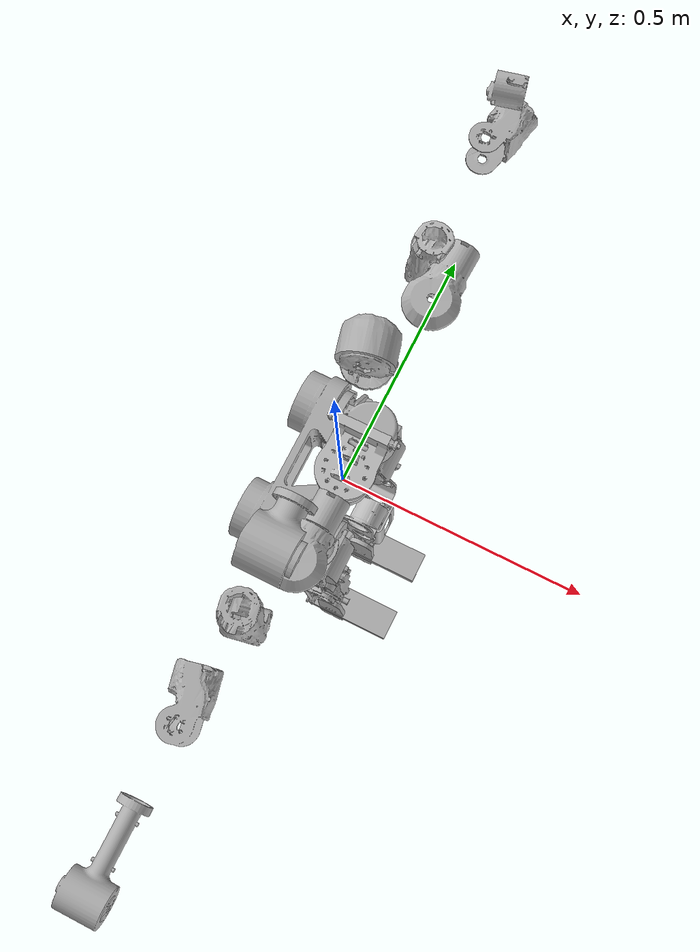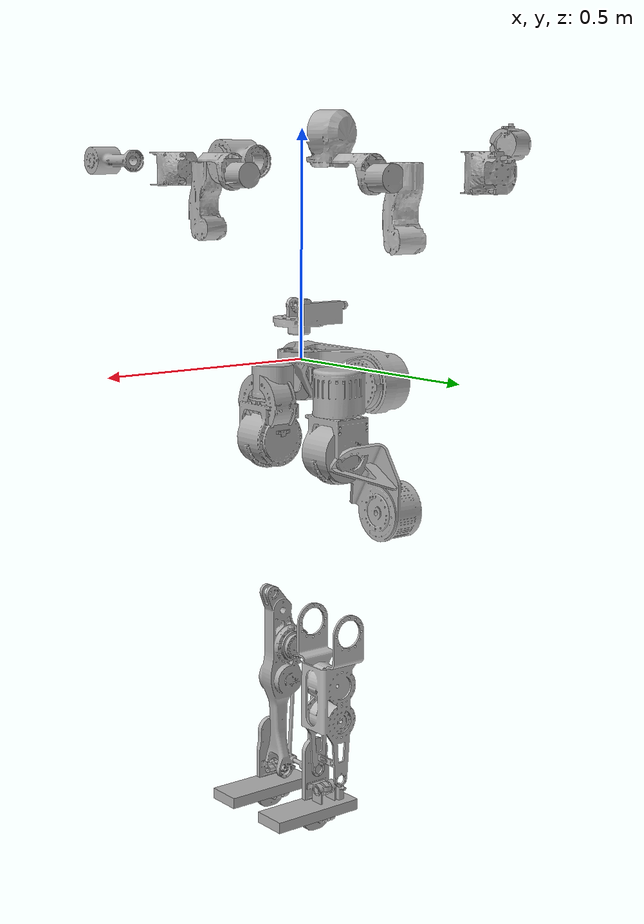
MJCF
<mujoco model="sbt">
  <compiler angle="radian" meshdir="meshes/"/>

  <asset>
    <mesh name="base_link" content_type="model/stl" file="base_link.STL"/>
    <mesh name="left_hip_roll" content_type="model/stl" file="left_hip_roll.STL"/>
    <mesh name="left_hip_yaw" content_type="model/stl" file="left_hip_yaw.STL"/>
    <mesh name="left_hip_pitch" content_type="model/stl" file="left_hip_pitch.STL"/>
    <mesh name="left_knee" content_type="model/stl" file="left_knee.STL"/>
    <mesh name="left_ankle_pitch" content_type="model/stl" file="left_ankle_pitch.STL"/>
    <mesh name="left_ankle_roll" content_type="model/stl" file="left_ankle_roll.STL"/>
    <mesh name="right_hip_roll" content_type="model/stl" file="right_hip_roll.STL"/>
    <mesh name="right_hip_yaw" content_type="model/stl" file="right_hip_yaw.STL"/>
    <mesh name="right_hip_pitch" content_type="model/stl" file="right_hip_pitch.STL"/>
    <mesh name="right_knee" content_type="model/stl" file="right_knee.STL"/>
    <mesh name="right_ankle_pitch" content_type="model/stl" file="right_ankle_pitch.STL"/>
    <mesh name="right_ankle_roll" content_type="model/stl" file="right_ankle_roll.STL"/>
    <mesh name="waist_yaw" content_type="model/stl" file="waist_yaw.STL"/>
    <mesh name="left_shoulder_pitch" content_type="model/stl" file="left_shoulder_pitch.STL"/>
    <mesh name="left_shoulder_roll" content_type="model/stl" file="left_shoulder_roll.STL"/>
    <mesh name="left_shoulder_yaw" content_type="model/stl" file="left_shoulder_yaw.STL"/>
    <mesh name="left_elbow" content_type="model/stl" file="left_elbow.STL"/>
    <mesh name="left_wrist_roll" content_type="model/stl" file="left_wrist_roll.STL"/>
    <mesh name="right_shoulder_pitch" content_type="model/stl" file="right_shoulder_pitch.STL"/>
    <mesh name="right_shoulder_roll" content_type="model/stl" file="right_shoulder_roll.STL"/>
    <mesh name="right_shoulder_yaw" content_type="model/stl" file="right_shoulder_yaw.STL"/>
    <mesh name="right_elbow" content_type="model/stl" file="right_elbow.STL"/>
    <mesh name="right_wrist_roll" content_type="model/stl" file="right_wrist_roll.STL"/>
  </asset>

  <worldbody>
    <body name="base_link">
      <inertial pos="-0.10125 -1.4179e-07 -0.041448" quat="0.68958 0.68958 0.156458 -0.156457" mass="7.4135" diaginertia="0.0292714 0.0262626 0.014902"/>
      <geom type="mesh" contype="0" conaffinity="0" group="1" density="0" rgba="0.69804 0.69804 0.69804 1" mesh="base_link"/>
      <geom type="mesh" rgba="0.69804 0.69804 0.69804 1" mesh="base_link"/>
      <body name="left_hip_roll" pos="-0.11644 0.1225 -0.04795">
        <inertial pos="0.10837 -2.3489e-06 -0.020356" quat="-2.31903e-06 0.786727 -5.4744e-06 0.617301" mass="2.1827" diaginertia="0.00347587 0.0032228 0.00284013"/>
        <joint name="left_hip_roll_joint" pos="0 0 0" axis="1 0 0" range="-0.17 0.44" actuatorfrcrange="-267 267"/>
        <geom type="mesh" contype="0" conaffinity="0" group="1" density="0" rgba="0.69804 0.69804 0.69804 1" mesh="left_hip_roll"/>
        <body name="left_hip_yaw" pos="0.1155 0 -0.0182">
          <inertial pos="-0.00016271 -0.0040921 -0.1177" quat="0.705796 -0.0476295 0.0697462 0.703363" mass="3.3125" diaginertia="0.00629233 0.00531675 0.00516232"/>
          <joint name="left_hip_yaw_joint" pos="0 0 0" axis="0 0 1" range="-0.7 0.7" actuatorfrcrange="-121 121"/>
          <geom type="mesh" contype="0" conaffinity="0" group="1" density="0" rgba="0.69804 0.69804 0.69804 1" mesh="left_hip_yaw"/>
          <body name="left_hip_pitch" pos="0 -0.0015 -0.125">
            <inertial pos="0.0025393 0.0034884 -0.15511" quat="0.696148 -0.0392199 0.0223547 0.716477" mass="5.7187" diaginertia="0.0332183 0.0326321 0.00953413"/>
            <joint name="left_hip_pitch_joint" pos="0 0 0" axis="0 1 0" range="-1.34 1.83" actuatorfrcrange="-267 267"/>
            <geom type="mesh" contype="0" conaffinity="0" group="1" density="0" rgba="0.69804 0.69804 0.69804 1" mesh="left_hip_pitch"/>
            <body name="left_knee" pos="0 -0.034937 -0.4">
              <inertial pos="-0.017852 -6.7212e-06 -0.15577" quat="0.702401 2.77719e-05 -0.0026194 0.711777" mass="3.6902" diaginertia="0.0227294 0.0220441 0.00239045"/>
              <joint name="left_knee_joint" pos="0 0 0" axis="0 -1 0" range="-2.09 0.09" actuatorfrcrange="-267 267"/>
              <geom type="mesh" contype="0" conaffinity="0" group="1" density="0" rgba="0.75294 0.75294 0.75294 1" mesh="left_knee"/>
              <body name="left_ankle_pitch" pos="0 0.00043724 -0.387">
                <inertial pos="1.6609e-09 3.2596e-09 -6.0503e-09" quat="0.707107 0.707107 0 0" mass="0.09865" diaginertia="2.4782e-05 2.4168e-05 6.0596e-06"/>
                <joint name="left_ankle_pitch_joint" pos="0 0 0" axis="0 -1 0" range="-0.52 1.05" actuatorfrcrange="-42 42"/>
                <geom type="mesh" contype="0" conaffinity="0" group="1" density="0" rgba="0.69804 0.69804 0.69804 1" mesh="left_ankle_pitch"/>
                <body name="left_ankle_roll">
                  <inertial pos="0.039669 -5.3886e-08 -0.036778" quat="0 0.733534 0 0.679653" mass="0.60538" diaginertia="0.00265188 0.0025604 0.000326769"/>
                  <joint name="left_ankle_roll_joint" pos="0 0 0" axis="-1 0 0" range="-0.44 0.44" actuatorfrcrange="-42 42"/>
                  <geom type="mesh" contype="0" conaffinity="0" group="1" density="0" rgba="0.69804 0.69804 0.69804 1" mesh="left_ankle_roll"/>
                  <geom size="0.1125 0.04 0.0125" pos="0.046 0 -0.042" type="box" rgba="0.69804 0.69804 0.69804 1"/>
                  <body name="left_foot_front_link" pos="0.15 0 -0.052"/>
                  <body name="left_foot_mid_link" pos="0.05 0 -0.052"/>
                  <body name="left_foot_hind_link" pos="-0.06 0 -0.052"/>
                </body>
              </body>
            </body>
          </body>
        </body>
      </body>
      <body name="right_hip_roll" pos="-0.11644 -0.1225 -0.04795">
        <inertial pos="0.10837 -2.3489e-06 -0.020356" quat="-2.31903e-06 0.786727 -5.4744e-06 0.617301" mass="2.1827" diaginertia="0.00347587 0.0032228 0.00284013"/>
        <joint name="right_hip_roll_joint" pos="0 0 0" axis="1 0 0" range="-0.44 0.17" actuatorfrcrange="-267 267"/>
        <geom type="mesh" contype="0" conaffinity="0" group="1" density="0" rgba="0.69804 0.69804 0.69804 1" mesh="right_hip_roll"/>
        <body name="right_hip_yaw" pos="0.1155 0 -0.0182">
          <inertial pos="-0.00016274 0.0040921 -0.1177" quat="0.703362 0.0697434 -0.0476322 0.705797" mass="3.3125" diaginertia="0.00629233 0.00531675 0.00516232"/>
          <joint name="right_hip_yaw_joint" pos="0 0 0" axis="0 0 1" range="-0.7 0.7" actuatorfrcrange="-121 121"/>
          <geom type="mesh" contype="0" conaffinity="0" group="1" density="0" rgba="0.69804 0.69804 0.69804 1" mesh="right_hip_yaw"/>
          <body name="right_hip_pitch" pos="0 0.0015 -0.125">
            <inertial pos="0.0025393 -0.0034884 -0.15511" quat="0.716393 0.0223445 -0.0392287 0.696235" mass="5.7187" diaginertia="0.0332183 0.0326321 0.0095343"/>
            <joint name="right_hip_pitch_joint" pos="0 0 0" axis="0 1 0" range="-1.34 1.83" actuatorfrcrange="-267 267"/>
            <geom type="mesh" contype="0" conaffinity="0" group="1" density="0" rgba="0.69804 0.69804 0.69804 1" mesh="right_hip_pitch"/>
            <body name="right_knee" pos="0 0.034937 -0.4">
              <inertial pos="-0.017852 6.7212e-06 -0.15577" quat="0.711798 -0.00262139 2.52241e-05 0.702379" mass="3.6902" diaginertia="0.0227294 0.0220441 0.00239045"/>
              <joint name="right_knee_joint" pos="0 0 0" axis="0 -1 0" range="-2.09 0.09" actuatorfrcrange="-267 267"/>
              <geom type="mesh" contype="0" conaffinity="0" group="1" density="0" rgba="0.69804 0.69804 0.69804 1" mesh="right_knee"/>
              <body name="right_ankle_pitch" pos="0 -0.00043724 -0.387">
                <inertial pos="1.6609e-09 3.2596e-09 -6.0503e-09" quat="0.707107 0.707107 0 0" mass="0.09865" diaginertia="2.4782e-05 2.4168e-05 6.0596e-06"/>
                <joint name="right_ankle_pitch_joint" pos="0 0 0" axis="0 -1 0" range="-0.52 1.05" actuatorfrcrange="-42 42"/>
                <geom type="mesh" contype="0" conaffinity="0" group="1" density="0" rgba="0.69804 0.69804 0.69804 1" mesh="right_ankle_pitch"/>
                <body name="right_ankle_roll">
                  <inertial pos="0.039669 -5.3901e-08 -0.036778" quat="0 0.733534 0 0.679653" mass="0.60538" diaginertia="0.00265188 0.0025604 0.000326769"/>
                  <joint name="right_ankle_roll_joint" pos="0 0 0" axis="-1 0 0" range="-0.44 0.44" actuatorfrcrange="-42 42"/>
                  <geom type="mesh" contype="0" conaffinity="0" group="1" density="0" rgba="0.69804 0.69804 0.69804 1" mesh="right_ankle_roll"/>
                  <geom size="0.1125 0.04 0.0125" pos="0.046 0 -0.042" type="box" rgba="0.69804 0.69804 0.69804 1"/>
                  <body name="right_foot_front_link" pos="0.15 0 -0.052"/>
                  <body name="right_foot_mid_link" pos="0.05 0 -0.052"/>
                  <body name="right_foot_hind_link" pos="-0.06 0 -0.052"/>
                </body>
              </body>
            </body>
          </body>
        </body>
      </body>
      <body name="waist_yaw" pos="0.0080635 0 0.0573">
        <inertial pos="0.001283 -7.589e-05 0.20559" quat="0.501725 0.497653 -0.502492 0.498112" mass="10.4394" diaginertia="0.033042 0.0323261 0.0304469"/>
        <geom type="mesh" contype="0" conaffinity="0" group="1" density="0" rgba="0.75294 0.75294 0.75294 1" mesh="waist_yaw"/>
        <geom type="mesh" rgba="0.75294 0.75294 0.75294 1" mesh="waist_yaw"/>
        <body name="upper_body_link" pos="0 0 0.3">
          <body name="left_shoulder_pitch" pos="0 0.098693 0.07088">
            <inertial pos="0.0091062 0.13568 0.00087007" quat="0.705814 0.705815 -0.0427311 -0.0427293" mass="1.4073" diaginertia="0.00186382 0.0017462 0.00138138"/>
            <joint name="left_shoulder_pitch_joint" pos="0 0 0" axis="0 1 0" range="-3.09 2.67" actuatorfrcrange="-60 60"/>
            <geom type="mesh" contype="0" conaffinity="0" group="1" density="0" rgba="0.69804 0.69804 0.69804 1" mesh="left_shoulder_pitch"/>
            <body name="left_shoulder_roll" pos="0.0444 0.14081 0.00087012">
              <inertial pos="-0.044206 0.091886 2.9541e-07" quat="0.434132 0.558013 -0.434293 0.558158" mass="1.0231" diaginertia="0.0013318 0.00131096 0.000682828"/>
              <joint name="left_shoulder_roll_joint" pos="0 0 0" axis="-1 0 0" range="-1.59 2.25" actuatorfrcrange="-60 60"/>
              <geom type="mesh" contype="0" conaffinity="0" group="1" density="0" rgba="0.69804 0.69804 0.69804 1" mesh="left_shoulder_roll"/>
              <body name="left_shoulder_yaw" pos="-0.0444 0.103 0">
                <inertial pos="-0.00062283 0.18132 0.008027" quat="0.38132 0.400028 -0.613332 0.564267" mass="1.222" diaginertia="0.00254591 0.00253872 0.00101317"/>
                <joint name="left_shoulder_yaw_joint" pos="0 0 0" axis="0 1 0" range="-2.62 2.62" actuatorfrcrange="-60 60"/>
                <geom type="mesh" contype="0" conaffinity="0" group="1" density="0" rgba="0.75294 0.75294 0.75294 1" mesh="left_shoulder_yaw"/>
                <body name="left_elbow" pos="0 0.197 0.0135">
                  <inertial pos="-4.9236e-08 0.080341 -0.013515" quat="0.791621 0.611013 -3.90561e-05 4.75426e-05" mass="0.73325" diaginertia="0.00086196 0.000834991 0.000390249"/>
                  <joint name="left_elbow_joint" pos="0 0 0" axis="0 0 1" range="-2.09 1.05" actuatorfrcrange="-40 40"/>
                  <geom type="mesh" contype="0" conaffinity="0" group="1" density="0" rgba="0.69804 0.69804 0.69804 1" mesh="left_elbow"/>
                  <body name="left_wrist_roll" pos="0 0.0896 -0.0135">
                    <inertial pos="0.0029058 0.16387 -1.135e-05" quat="0.518412 0.480333 -0.518971 0.48083" mass="0.63743" diaginertia="0.0011544 0.00112475 0.000340641"/>
                    <joint name="left_wrist_roll_joint" pos="0 0 0" axis="0 1 0" range="-1.97 1.97" actuatorfrcrange="-20 20"/>
                    <geom type="mesh" contype="0" conaffinity="0" group="1" density="0" rgba="0.69804 0.69804 0.69804 1" mesh="left_wrist_roll"/>
                  </body>
                </body>
              </body>
            </body>
          </body>
          <body name="right_shoulder_pitch" pos="0 -0.098693 0.07088">
            <inertial pos="0.0091062 -0.13568 0.00087017" quat="0.705814 0.705815 0.0427311 0.0427293" mass="1.4073" diaginertia="0.00186382 0.0017462 0.00138138"/>
            <joint name="right_shoulder_pitch_joint" pos="0 0 0" axis="0 -1 0" range="-3.09 2.67" actuatorfrcrange="-60 60"/>
            <geom type="mesh" contype="0" conaffinity="0" group="1" density="0" rgba="0.69804 0.69804 0.69804 1" mesh="right_shoulder_pitch"/>
            <body name="right_shoulder_roll" pos="0.0444 -0.14081 0.00087012">
              <inertial pos="-0.044206 -0.091886 -2.9542e-07" quat="0.558158 0.434293 -0.558013 0.434132" mass="1.0231" diaginertia="0.0013318 0.00131096 0.000682828"/>
              <joint name="right_shoulder_roll_joint" pos="0 0 0" axis="-1 0 0" range="-2.25 1.59" actuatorfrcrange="-60 60"/>
              <geom type="mesh" contype="0" conaffinity="0" group="1" density="0" rgba="0.69804 0.69804 0.69804 1" mesh="right_shoulder_roll"/>
              <body name="right_shoulder_yaw" pos="-0.0444 -0.103 0">
                <inertial pos="-0.00062239 -0.18132 0.0080269" quat="0.40066 0.381894 -0.563869 0.612927" mass="1.222" diaginertia="0.0025459 0.00253873 0.00101317"/>
                <joint name="right_shoulder_yaw_joint" pos="0 0 0" axis="0 -1 0" range="-2.62 2.62" actuatorfrcrange="-60 60"/>
                <geom type="mesh" contype="0" conaffinity="0" group="1" density="0" rgba="0.69804 0.69804 0.69804 1" mesh="right_shoulder_yaw"/>
                <body name="right_elbow" pos="0 -0.197 0.0135">
                  <inertial pos="4.9236e-08 -0.080341 -0.013515" quat="0.611013 0.791621 4.75426e-05 -3.90561e-05" mass="0.73325" diaginertia="0.00086196 0.000834991 0.000390249"/>
                  <joint name="right_elbow_joint" pos="0 0 0" axis="0 0 1" range="-1.05 2.09" actuatorfrcrange="-40 40"/>
                  <geom type="mesh" contype="0" conaffinity="0" group="1" density="0" rgba="0.69804 0.69804 0.69804 1" mesh="right_elbow"/>
                  <body name="right_wrist_roll" pos="0 -0.1221 -0.0135">
                    <inertial pos="0.0029058 -0.13137 1.135e-05" quat="0.48083 0.518971 -0.480333 0.518412" mass="0.63743" diaginertia="0.0011544 0.00112475 0.000340641"/>
                    <joint name="right_wrist_roll_joint" pos="0 0 0" axis="0 1 0" range="-1.97 1.97" actuatorfrcrange="-20 20"/>
                    <geom type="mesh" contype="0" conaffinity="0" group="1" density="0" rgba="0.69804 0.69804 0.69804 1" mesh="right_wrist_roll"/>
                  </body>
                </body>
              </body>
            </body>
          </body>
        </body>
      </body>
    </body>
  </worldbody>
</mujoco>
